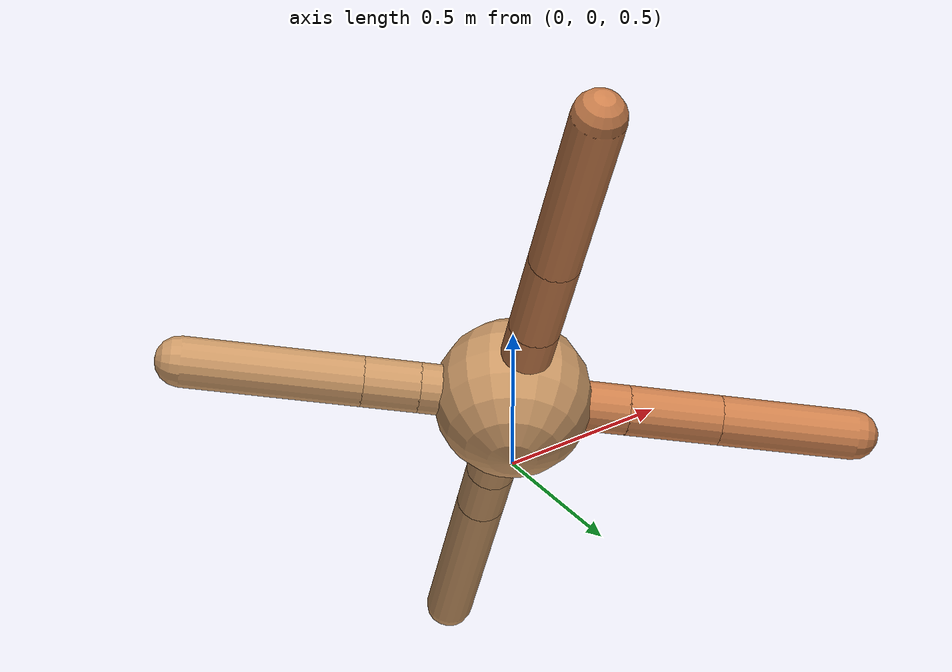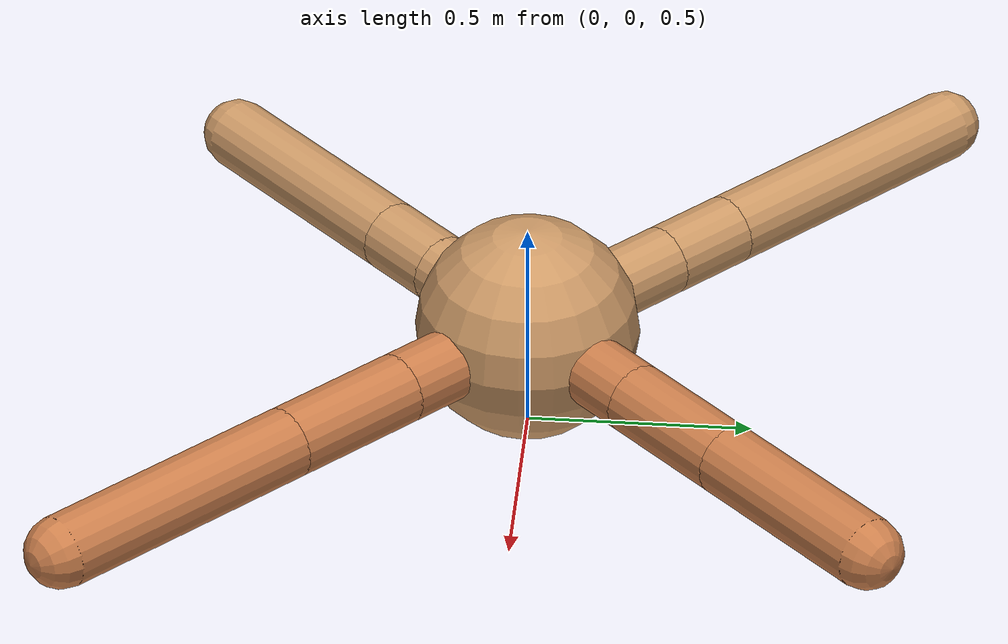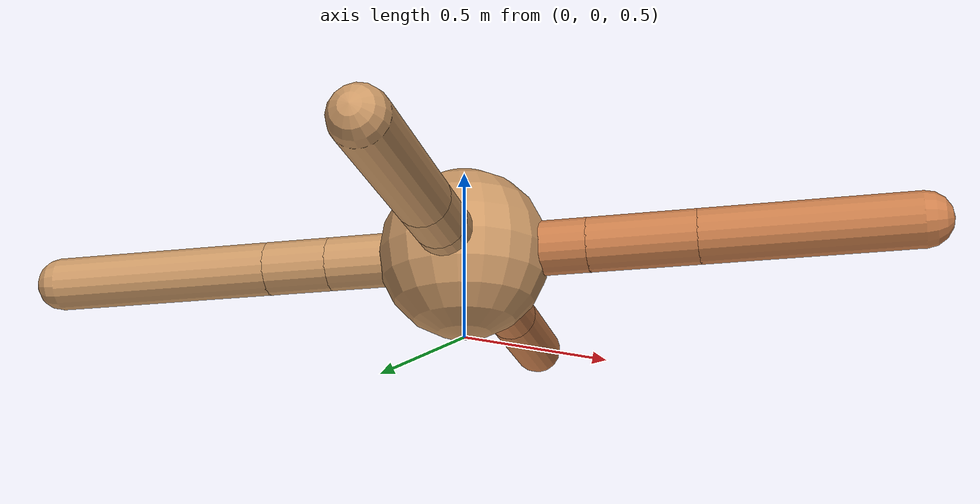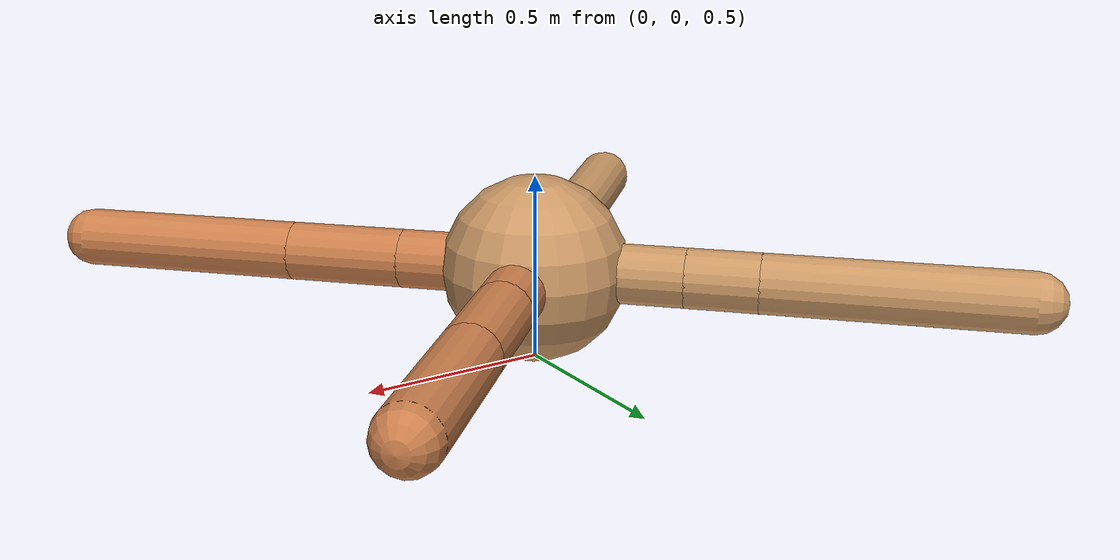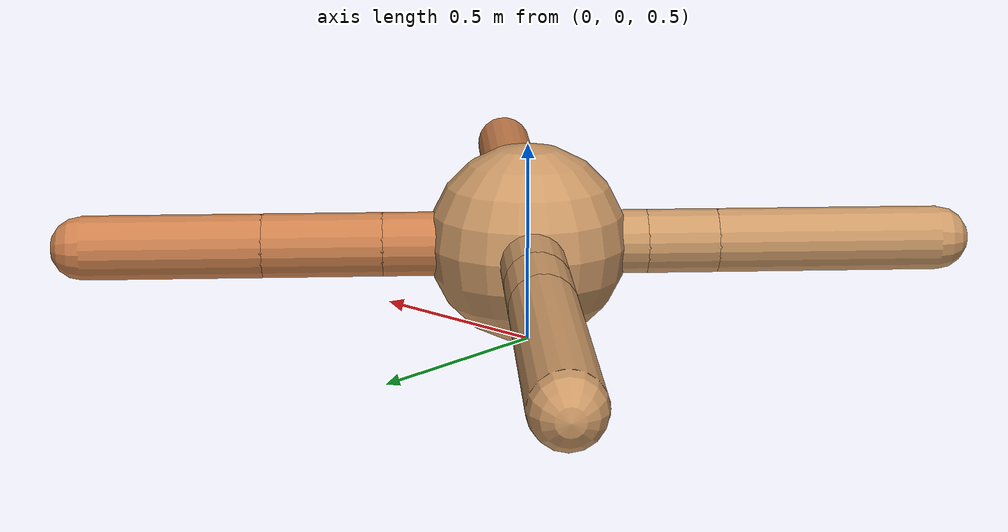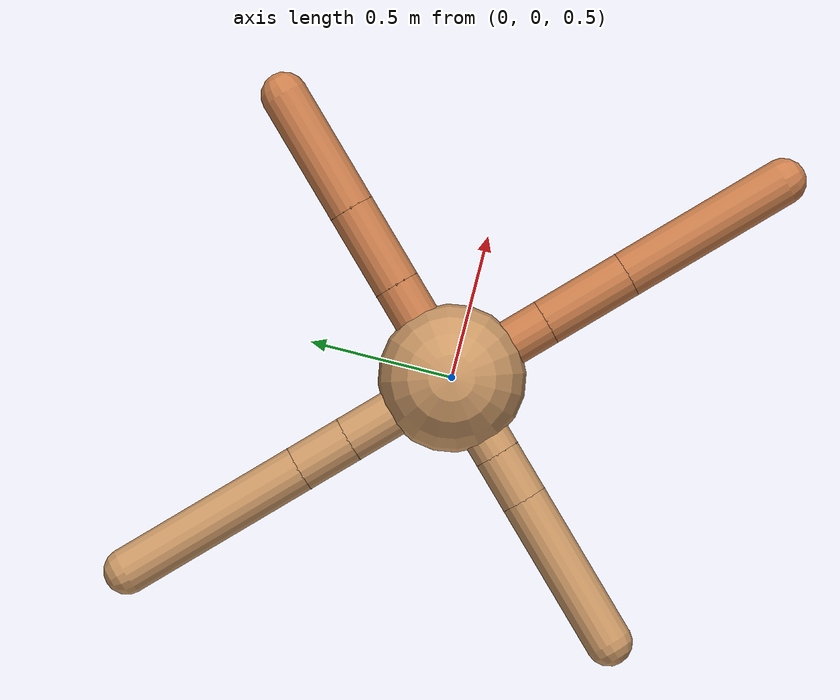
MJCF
<mujoco model="ant">
  <compiler angle="degree" coordinate="local" inertiafromgeom="true" />
  <option integrator="RK4" timestep="0.01" />
  <custom>
    <numeric data="0.0 0.0 0.55 1.0 0.0 0.0 0.0 0.0 1.0 0.0 -1.0 0.0 -1.0 0.0 1.0" name="init_qpos" />
  </custom>
  <default>
    <joint armature="1" damping="1" limited="true" />
    <geom conaffinity="0" condim="3" density="5.0" friction="1.5 0.1 0.1" margin="0.01" rgba="0.8 0.6 0.4 1" />
  </default>
  <worldbody>
    <body name="torso" pos="0 0 0.75">
      <geom name="torso_geom" pos="0 0 0" size="0.25" type="sphere" />

      <body name="front_left_leg" pos="0 0 0">
        <geom fromto="0.0 0.0 0.0 0.25622843051241234 0.25622843051241234 0.0" name="aux_1_geom" size="0.08" type="capsule" rgba=".8 .5 .3 1" />
        <body name="aux_1" pos="0.25622843051241234 0.25622843051241234 0.0">
          <joint axis="0 0 1" name="hip_1" pos="0.0 0.0 0.0" range="-40 40" type="hinge" />
          <geom fromto="0.0 0.0 0.0 0.2102096766412852 0.2102096766412852 0.0" name="left_leg_geom" size="0.08" type="capsule" rgba=".8 .5 .3 1" />
          <body pos="0.2102096766412852 0.2102096766412852 0.0" name="front_left_foot">
            <joint axis="-1 1 0" name="ankle_1" pos="0.0 0.0 0.0" range="30 100" type="hinge" />
            <geom fromto="0.0 0.0 0.0 0.3135728706821086 0.3135728706821086 0.0" name="left_ankle_geom" size="0.08" type="capsule" rgba=".8 .5 .3 1" />
          </body>
        </body>
      </body>
      <body name="front_right_leg" pos="0 0 0">
        <geom fromto="0.0 0.0 0.0 -0.2850838984840149 0.2850838984840149 0.0" name="aux_2_geom" size="0.08" type="capsule" />
        <body name="aux_2" pos="-0.2850838984840149 0.2850838984840149 0.0">
          <joint axis="0 0 1" name="hip_2" pos="0.0 0.0 0.0" range="-40 40" type="hinge" />
          <geom fromto="0.0 0.0 0.0 -0.13594442174138385 0.13594442174138385 0.0" name="right_leg_geom" size="0.08" type="capsule" />
          <body pos="-0.13594442174138385 0.13594442174138385 0.0" name="front_right_foot">
            <joint axis="1 1 0" name="ankle_2" pos="0.0 0.0 0.0" range="-100 -30" type="hinge" />
            <geom fromto="0.0 0.0 0.0 -0.4757067547718308 0.4757067547718308 0.0" name="right_ankle_geom" size="0.08" type="capsule" />
          </body>
        </body>
      </body>
      <body name="left_back_leg" pos="0 0 0">
        <geom fromto="0.0 0.0 0.0 -0.20978465791811454 -0.20978465791811454 0.0" name="aux_3_geom" size="0.08" type="capsule" />
        <body name="aux_3" pos="-0.20978465791811454 -0.20978465791811454 0.0">
          <joint axis="0 0 1" name="hip_3" pos="0.0 0.0 0.0" range="-40 40" type="hinge" />
          <geom fromto="0.0 0.0 0.0 -0.12509533630569433 -0.12509533630569433 0.0" name="back_leg_geom" size="0.08" type="capsule" />
          <body pos="-0.12509533630569433 -0.12509533630569433 0.0" name="left_back_foot">
            <joint axis="-1 1 0" name="ankle_3" pos="0.0 0.0 0.0" range="-100 -30" type="hinge" />
            <geom fromto="0.0 0.0 0.0 -0.39505485334260737 -0.39505485334260737 0.0" name="third_ankle_geom" size="0.08" type="capsule" />
          </body>
        </body>
      </body>
      <body name="right_back_leg" pos="0 0 0">
        <geom fromto="0.0 0.0 0.0 0.2589262437776655 -0.2589262437776655 0.0" name="aux_4_geom" size="0.08" type="capsule" rgba=".8 .5 .3 1" />
        <body name="aux_4" pos="0.2589262437776655 -0.2589262437776655 0.0">
          <joint axis="0 0 1" name="hip_4" pos="0.0 0.0 0.0" range="-40 40" type="hinge" />
          <geom fromto="0.0 0.0 0.0 0.22187225156593327 -0.22187225156593327 0.0" name="rightback_leg_geom" size="0.08" type="capsule" rgba=".8 .5 .3 1" />
          <body pos="0.22187225156593327 -0.22187225156593327 0.0" name="right_back_foot">
            <joint axis="1 1 0" name="ankle_4" pos="0.0 0.0 0.0" range="30 100" type="hinge" />
            <geom fromto="0.0 0.0 0.0 0.4327821587923363 -0.4327821587923363 0.0" name="fourth_ankle_geom" size="0.08" type="capsule" rgba=".8 .5 .3 1" />
          </body>
        </body>
      </body>
    </body>
  </worldbody>
  <actuator>
    <motor ctrllimited="true" ctrlrange="-1.0 1.0" joint="hip_4" gear="150" />
    <motor ctrllimited="true" ctrlrange="-1.0 1.0" joint="ankle_4" gear="150" />
    <motor ctrllimited="true" ctrlrange="-1.0 1.0" joint="hip_1" gear="150" />
    <motor ctrllimited="true" ctrlrange="-1.0 1.0" joint="ankle_1" gear="150" />
    <motor ctrllimited="true" ctrlrange="-1.0 1.0" joint="hip_2" gear="150" />
    <motor ctrllimited="true" ctrlrange="-1.0 1.0" joint="ankle_2" gear="150" />
    <motor ctrllimited="true" ctrlrange="-1.0 1.0" joint="hip_3" gear="150" />
    <motor ctrllimited="true" ctrlrange="-1.0 1.0" joint="ankle_3" gear="150" />
  </actuator>
</mujoco>
